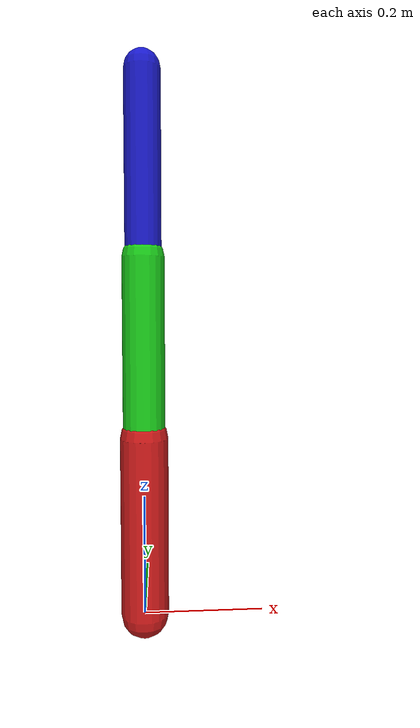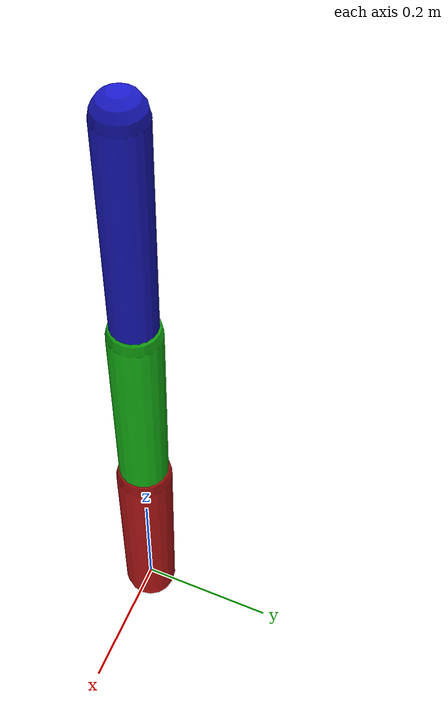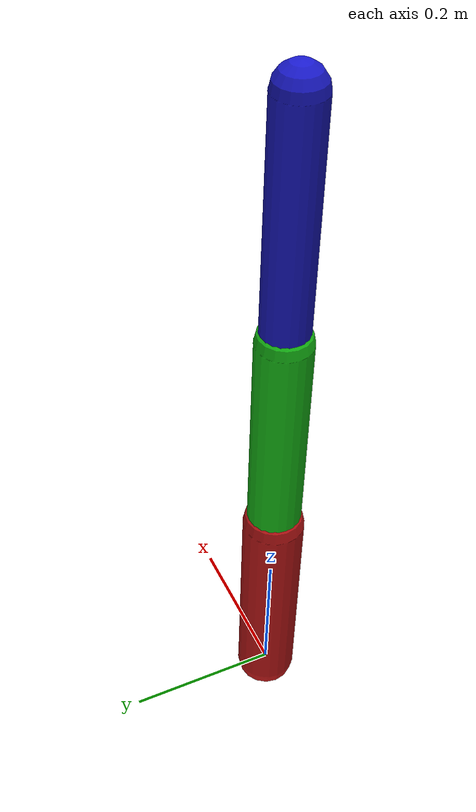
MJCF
<mujoco model="arm_no_added_inertia">
  <compiler angle="degree"/>
  <option gravity="0 0 -9.81" timestep="0.002"/>

  <worldbody>
    <body name="base" pos="0 0 0">
      <body name="link1" pos="0 0 0.0">
        <inertial pos="0 0 0.15" mass="2.0"
                  diaginertia="0.0056 0.0056 0.0056"/>

        <joint name="j1" type="hinge" axis="0 0 1"
               limited="false" armature="1.281"/>
        <geom type="capsule" fromto="0 0 0  0 0 0.3"
              size="0.04" rgba="0.8 0.1 0.1 1"/>

        <body name="link2" pos="0 0 0.3">
          <inertial pos="0 0 0.15" mass="1.5"
                    diaginertia="0.0081 0.0081 0.0081"/>
          <joint name="j2" type="hinge" axis="0 1 0"
                 limited="false" armature="0.605"/>
          <geom type="capsule" fromto="0 0 0  0 0 0.3"
                size="0.035" rgba="0.1 0.8 0.1 1"/>

          <body name="link3" pos="0 0 0.3">
            <inertial pos="0 0 0.15" mass="1.0"
                      diaginertia="0.0217 0.0217 0.0217"/>
            <joint name="j3" type="hinge" axis="0 1 0"
                   limited="false" armature="0.451"/>
            <geom type="capsule" fromto="0 0 0  0 0 0.3"
                  size="0.03" rgba="0.1 0.1 0.8 1"/>
          </body>
        </body>
      </body>
    </body>
  </worldbody>

  <actuator>
    <position name="j1_motor" joint="j1" kp="50"/>
    <position name="j2_motor" joint="j2" kp="50"/>
    <position name="j3_motor" joint="j3" kp="50"/>
  </actuator>

  <sensor>
    <jointpos name="j1_pos" joint="j1"/>
    <jointpos name="j2_pos" joint="j2"/>
    <jointpos name="j3_pos" joint="j3"/>
  </sensor>
</mujoco>
